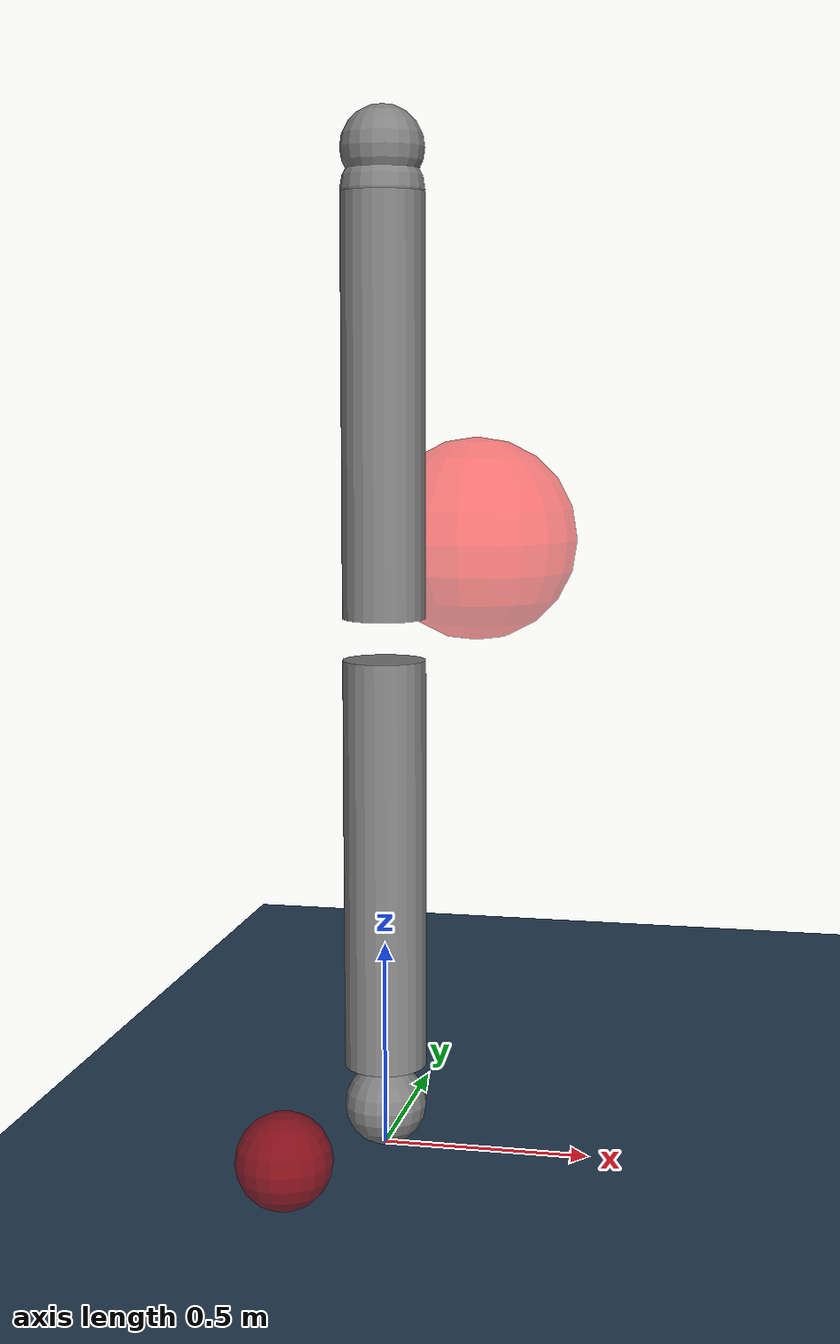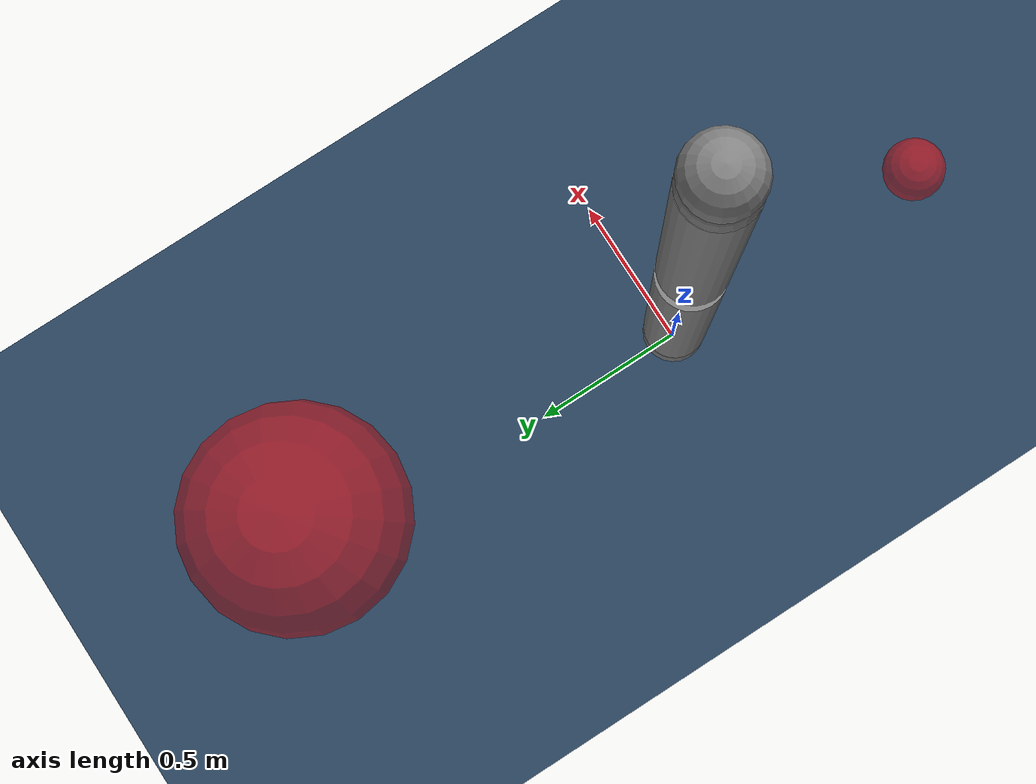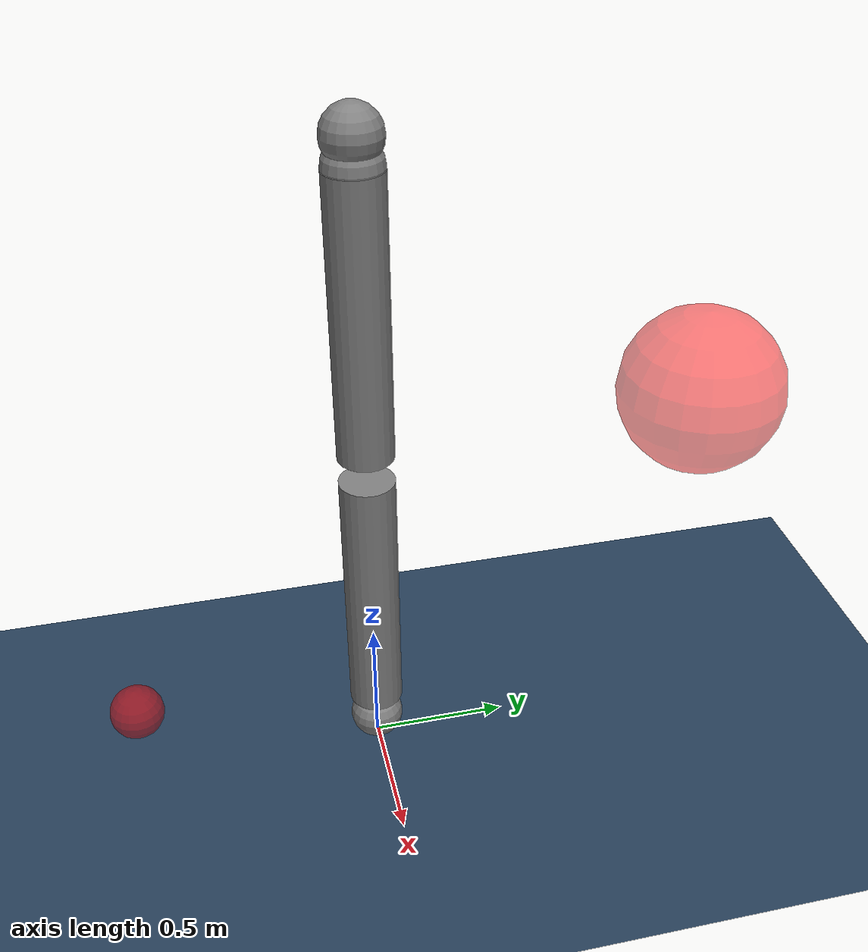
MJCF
<mujoco model="planar_2dof">
    <compiler angle="radian"/>

    <option gravity="0 0 0" integrator="implicitfast" timestep="0.01">
        <flag contact="enable"/>
    </option>

    <worldbody>
        <geom size="0.1" pos="0 0 0.1"/>
        <body name="link0" pos="0 0 0.1">
            <inertial pos="0 0 0.5" mass="1" diaginertia="0.0858 0.0858 0.005"/>
            <joint name="joint1" pos="0 0 0" axis="1 0 0" range="-2.8973 2.8973" actuatorfrcrange="-87 87"/>
            <geom size="0.1 0.5" pos="0 0 0.6" type="cylinder"/>
            <body name="link1" pos="0 0 1.1">
                <inertial pos="0 0 0.50007" mass="1.0001" diaginertia="0.0858997 0.0858997 0.00505"/>
                <joint name="joint2" pos="0 0 0" axis="1 0 0" range="-1.7628 1.7628" actuatorfrcrange="-87 87"/>
                <geom size="0.1 0.5" pos="0 0 0.6" type="cylinder"/>
                <geom size="0.1" pos="0 0 1.2"/>
                <body name="link2" pos="0 0 1.1">
                    <inertial pos="0 0 0.005" mass="0.0001" diaginertia="0.00005 0.00005 0.00005"/>
                    <joint name="joint3" pos="0 0 0" axis="1 0 0" range="-1.7628 1.7628" actuatorfrcrange="-87 87"/>
                    <geom name="tip" size="0.1" pos="0 0 0.005" type="sphere"/>
                    <site name="tip" pos="0 0 0.005" size="0.01"/>
                </body>
            </body>
        </body>

        <body name="obstacle_0" mocap="true" pos="0.0 -0.9 0.3" quat="1 0 0 0">
            <geom type="sphere" name="obstacle_0" size=".1" rgba="1 0 0 .5"/>
        </body>
        <body name="obstacle_1" mocap="true" pos="0.0 1.2 1.4" quat="1 0 0 0">
            <geom type="sphere" name="obstacle_1" size=".3" rgba="1 0 0 .5"/>
        </body>

        <body name="target" mocap="true" pos="0.0 0. 0.3" quat="1 0 0 0">
            <geom type="sphere" name="target" size=".01" rgba="1 0 0 .5"/>
        </body>
    </worldbody>

    <visual>
        <headlight diffuse="0.6 0.6 0.6" ambient="0.3 0.3 0.3" specular="0 0 0"/>
        <rgba haze="0.15 0.25 0.35 1"/>
        <global azimuth="120" elevation="-20"/>
    </visual>

    <asset>
        <texture type="skybox" builtin="gradient" rgb1="0.3 0.5 0.7" rgb2="0 0 0" width="512" height="3072"/>
        <texture type="2d" name="groundplane" builtin="checker" mark="edge" rgb1="0.2 0.3 0.4" rgb2="0.1 0.2 0.3"
                 markrgb="0.8 0.8 0.8" width="300" height="300"/>
        <material name="groundplane" texture="groundplane" texuniform="true" texrepeat="5 5" reflectance="0.2"/>
    </asset>

    <worldbody>
        <light pos="0 0 1.5" dir="0 0 -1" directional="true"/>
        <geom name="floor" size="0 0 0.05" type="plane" material="groundplane"/>
    </worldbody>

    <actuator>
        <velocity joint="joint1" ctrlrange="-2.0 2.0" ctrllimited="true" kv="500"/>
        <velocity joint="joint2" ctrlrange="-2.0 2.0" ctrllimited="true" kv="500"/>
    </actuator>
</mujoco>
